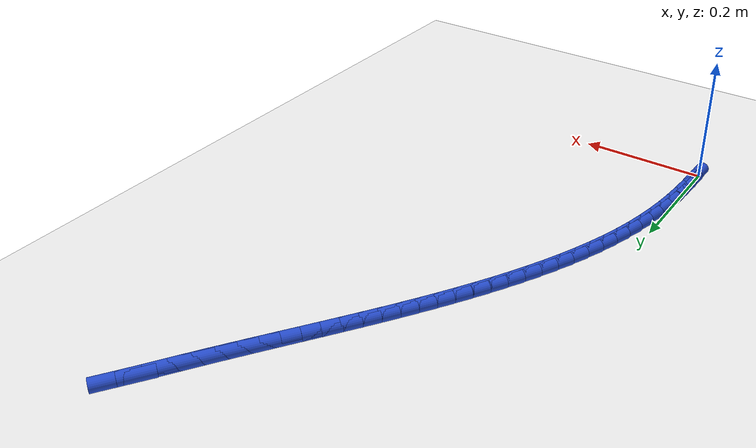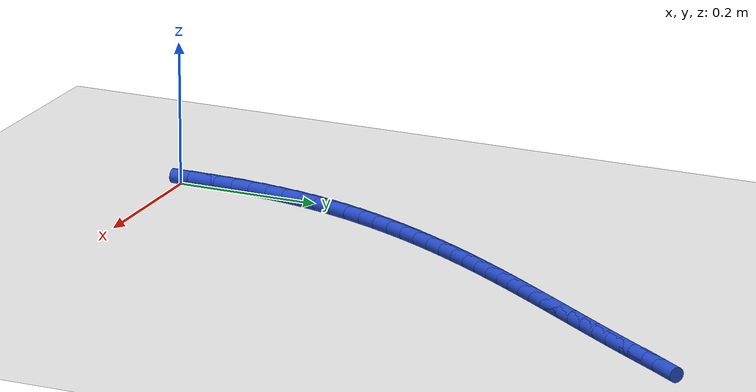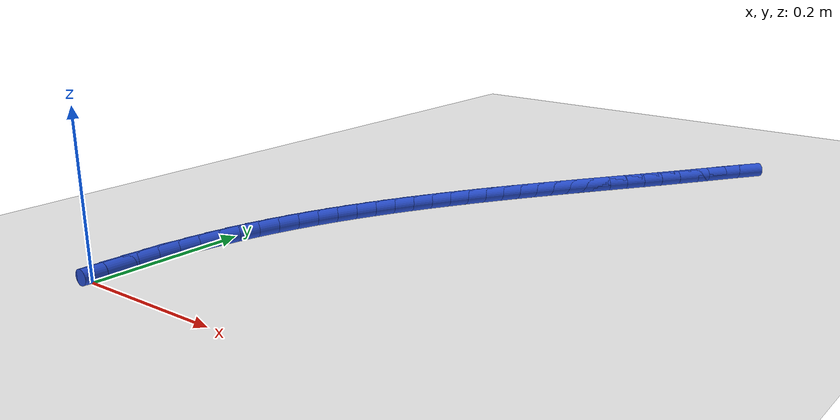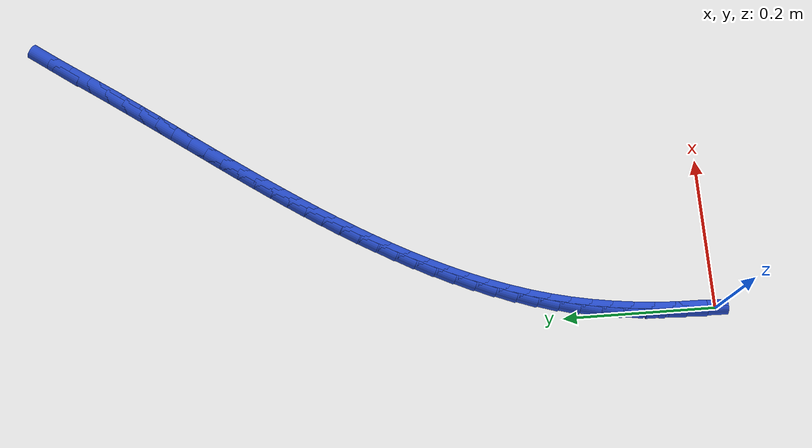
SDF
<sdf version="1.6">
 <world name="default">
  <model name="ground_plane">
   <static>1</static>
   <link name="link">
    <collision name="collision">
     <geometry><plane><normal>0 0 1</normal><size>100 100</size></plane></geometry>
     <surface><friction><ode><mu>100</mu><mu2>50</mu2></ode></friction></surface>
    </collision>
    <visual name="visual">
     <cast_shadows>0</cast_shadows>
     <geometry><plane><normal>0 0 1</normal><size>100 100</size></plane></geometry>
     <material>
      <script><uri>file://media/materials/scripts/gazebo.material</uri><name>Gazebo/WhiteGlow</name></script>
     </material>
    </visual>
   </link>
  </model>
  <model name="line">
   <link name="link_1">
    <pose>-2.9200421300071996e-05 0.027061845172039942 0.01 0 1.57 1.5444949600716549</pose>
    <collision name="collision">
     <geometry><cylinder><radius>0.01</radius><length>0.08</length></cylinder></geometry>
    </collision>
    <visual name="visual">
     <material>
      <script><name>Gazebo/Blue</name><uri>file://media/materials/scripts/gazebo.material</uri></script>
     </material>
     <geometry><cylinder><radius>0.01</radius><length>0.08</length></cylinder></geometry>
    </visual>
   </link>
   <link name="link_2">
    <pose>0.0006842096569551237 0.054180039251902304 0.01 0 1.57 1.5151995954347877</pose>
    <collision name="collision">
     <geometry><cylinder><radius>0.01</radius><length>0.08</length></cylinder></geometry>
    </collision>
    <visual name="visual">
     <material>
      <script><name>Gazebo/Blue</name><uri>file://media/materials/scripts/gazebo.material</uri></script>
     </material>
     <geometry><cylinder><radius>0.01</radius><length>0.08</length></cylinder></geometry>
    </visual>
   </link>
   <link name="link_3">
    <pose>0.002194301996070999 0.08131357902605951 0.01 0 1.57 1.4839247480656252</pose>
    <collision name="collision">
     <geometry><cylinder><radius>0.01</radius><length>0.08</length></cylinder></geometry>
    </collision>
    <visual name="visual">
     <material>
      <script><name>Gazebo/Blue</name><uri>file://media/materials/scripts/gazebo.material</uri></script>
     </material>
     <geometry><cylinder><radius>0.01</radius><length>0.08</length></cylinder></geometry>
    </visual>
   </link>
   <link name="link_4">
    <pose>0.004555148357352962 0.10842146128098404 0.01 0 1.57 1.4506119062643106</pose>
    <collision name="collision">
     <geometry><cylinder><radius>0.01</radius><length>0.08</length></cylinder></geometry>
    </collision>
    <visual name="visual">
     <material>
      <script><name>Gazebo/Blue</name><uri>file://media/materials/scripts/gazebo.material</uri></script>
     </material>
     <geometry><cylinder><radius>0.01</radius><length>0.08</length></cylinder></geometry>
    </visual>
   </link>
   <link name="link_5">
    <pose>0.007820820502106415 0.13546268280314816 0.01 0 1.57 1.4152124454950412</pose>
    <collision name="collision">
     <geometry><cylinder><radius>0.01</radius><length>0.08</length></cylinder></geometry>
    </collision>
    <visual name="visual">
     <material>
      <script><name>Gazebo/Blue</name><uri>file://media/materials/scripts/gazebo.material</uri></script>
     </material>
     <geometry><cylinder><radius>0.01</radius><length>0.08</length></cylinder></geometry>
    </visual>
   </link>
   <link name="link_6">
    <pose>0.012045390191636758 0.1623962403790244 0.01 0 1.57 1.377692109483791</pose>
    <collision name="collision">
     <geometry><cylinder><radius>0.01</radius><length>0.08</length></cylinder></geometry>
    </collision>
    <visual name="visual">
     <material>
      <script><name>Gazebo/Blue</name><uri>file://media/materials/scripts/gazebo.material</uri></script>
     </material>
     <geometry><cylinder><radius>0.01</radius><length>0.08</length></cylinder></geometry>
    </visual>
   </link>
   <link name="link_7">
    <pose>0.0172829291872494 0.18918113079508506 0.01 0 1.57 1.3380360453744053</pose>
    <collision name="collision">
     <geometry><cylinder><radius>0.01</radius><length>0.08</length></cylinder></geometry>
    </collision>
    <visual name="visual">
     <material>
      <script><name>Gazebo/Blue</name><uri>file://media/materials/scripts/gazebo.material</uri></script>
     </material>
     <geometry><cylinder><radius>0.01</radius><length>0.08</length></cylinder></geometry>
    </visual>
   </link>
   <link name="link_8">
    <pose>0.023587508601963982 0.21577635093613604 0.01 0 1.57 1.297177161098241</pose>
    <collision name="collision">
     <geometry><cylinder><radius>0.01</radius><length>0.08</length></cylinder></geometry>
    </collision>
    <visual name="visual">
     <material>
      <script><name>Gazebo/Blue</name><uri>file://media/materials/scripts/gazebo.material</uri></script>
     </material>
     <geometry><cylinder><radius>0.01</radius><length>0.08</length></cylinder></geometry>
    </visual>
   </link>
   <link name="link_9">
    <pose>0.030988013248767855 0.2421447179992894 0.01 0 1.57 1.2584734507983595</pose>
    <collision name="collision">
     <geometry><cylinder><radius>0.01</radius><length>0.08</length></cylinder></geometry>
    </collision>
    <visual name="visual">
     <material>
      <script><name>Gazebo/Blue</name><uri>file://media/materials/scripts/gazebo.material</uri></script>
     </material>
     <geometry><cylinder><radius>0.01</radius><length>0.08</length></cylinder></geometry>
    </visual>
   </link>
   <link name="link_10">
    <pose>0.039421361722653536 0.26826299881593973 0.01 0 1.57 1.2226131388580286</pose>
    <collision name="collision">
     <geometry><cylinder><radius>0.01</radius><length>0.08</length></cylinder></geometry>
    </collision>
    <visual name="visual">
     <material>
      <script><name>Gazebo/Blue</name><uri>file://media/materials/scripts/gazebo.material</uri></script>
     </material>
     <geometry><cylinder><radius>0.01</radius><length>0.08</length></cylinder></geometry>
    </visual>
   </link>
   <link name="link_11">
    <pose>0.04880348759329643 0.2941111432713786 0.01 0 1.57 1.189492367818633</pose>
    <collision name="collision">
     <geometry><cylinder><radius>0.01</radius><length>0.08</length></cylinder></geometry>
    </collision>
    <visual name="visual">
     <material>
      <script><name>Gazebo/Blue</name><uri>file://media/materials/scripts/gazebo.material</uri></script>
     </material>
     <geometry><cylinder><radius>0.01</radius><length>0.08</length></cylinder></geometry>
    </visual>
   </link>
   <link name="link_12">
    <pose>0.05905032443037188 0.31966910125089765 0.01 0 1.57 1.1589976364144043</pose>
    <collision name="collision">
     <geometry><cylinder><radius>0.01</radius><length>0.08</length></cylinder></geometry>
    </collision>
    <visual name="visual">
     <material>
      <script><name>Gazebo/Blue</name><uri>file://media/materials/scripts/gazebo.material</uri></script>
     </material>
     <geometry><cylinder><radius>0.01</radius><length>0.08</length></cylinder></geometry>
    </visual>
   </link>
   <link name="link_13">
    <pose>0.07007780580355527 0.34491682263978823 0.01 0 1.57 1.1310126287522888</pose>
    <collision name="collision">
     <geometry><cylinder><radius>0.01</radius><length>0.08</length></cylinder></geometry>
    </collision>
    <visual name="visual">
     <material>
      <script><name>Gazebo/Blue</name><uri>file://media/materials/scripts/gazebo.material</uri></script>
     </material>
     <geometry><cylinder><radius>0.01</radius><length>0.08</length></cylinder></geometry>
    </visual>
   </link>
   <link name="link_14">
    <pose>0.081801865282522 0.3698342573233421 0.01 0 1.57 1.105423599570831</pose>
    <collision name="collision">
     <geometry><cylinder><radius>0.01</radius><length>0.08</length></cylinder></geometry>
    </collision>
    <visual name="visual">
     <material>
      <script><name>Gazebo/Blue</name><uri>file://media/materials/scripts/gazebo.material</uri></script>
     </material>
     <geometry><cylinder><radius>0.01</radius><length>0.08</length></cylinder></geometry>
    </visual>
   </link>
   <link name="link_15">
    <pose>0.0941384364369474 0.3944013551868507 0.01 0 1.57 1.0821235650894114</pose>
    <collision name="collision">
     <geometry><cylinder><radius>0.01</radius><length>0.08</length></cylinder></geometry>
    </collision>
    <visual name="visual">
     <material>
      <script><name>Gazebo/Blue</name><uri>file://media/materials/scripts/gazebo.material</uri></script>
     </material>
     <geometry><cylinder><radius>0.01</radius><length>0.08</length></cylinder></geometry>
    </visual>
   </link>
   <link name="link_16">
    <pose>0.10700345283650689 0.4185980661156056 0.01 0 1.57 1.061015569920367</pose>
    <collision name="collision">
     <geometry><cylinder><radius>0.01</radius><length>0.08</length></cylinder></geometry>
    </collision>
    <visual name="visual">
     <material>
      <script><name>Gazebo/Blue</name><uri>file://media/materials/scripts/gazebo.material</uri></script>
     </material>
     <geometry><cylinder><radius>0.01</radius><length>0.08</length></cylinder></geometry>
    </visual>
   </link>
   <link name="link_17">
    <pose>0.12031284805087583 0.4424043399948985 0.01 0 1.57 1.0420152957055933</pose>
    <collision name="collision">
     <geometry><cylinder><radius>0.01</radius><length>0.08</length></cylinder></geometry>
    </collision>
    <visual name="visual">
     <material>
      <script><name>Gazebo/Blue</name><uri>file://media/materials/scripts/gazebo.material</uri></script>
     </material>
     <geometry><cylinder><radius>0.01</radius><length>0.08</length></cylinder></geometry>
    </visual>
   </link>
   <link name="link_18">
    <pose>0.1339825556497296 0.4658001267100208 0.01 0 1.57 1.0250532614204548</pose>
    <collision name="collision">
     <geometry><cylinder><radius>0.01</radius><length>0.08</length></cylinder></geometry>
    </collision>
    <visual name="visual">
     <material>
      <script><name>Gazebo/Blue</name><uri>file://media/materials/scripts/gazebo.material</uri></script>
     </material>
     <geometry><cylinder><radius>0.01</radius><length>0.08</length></cylinder></geometry>
    </visual>
   </link>
   <link name="link_19">
    <pose>0.14792850920274353 0.488765376146264 0.01 0 1.57 1.0100768490725263</pose>
    <collision name="collision">
     <geometry><cylinder><radius>0.01</radius><length>0.08</length></cylinder></geometry>
    </collision>
    <visual name="visual">
     <material>
      <script><name>Gazebo/Blue</name><uri>file://media/materials/scripts/gazebo.material</uri></script>
     </material>
     <geometry><cylinder><radius>0.01</radius><length>0.08</length></cylinder></geometry>
    </visual>
   </link>
   <link name="link_20">
    <pose>0.1620666422795931 0.5112800381889199 0.01 0 1.57 0.9970488804408632</pose>
    <collision name="collision">
     <geometry><cylinder><radius>0.01</radius><length>0.08</length></cylinder></geometry>
    </collision>
    <visual name="visual">
     <material>
      <script><name>Gazebo/Blue</name><uri>file://media/materials/scripts/gazebo.material</uri></script>
     </material>
     <geometry><cylinder><radius>0.01</radius><length>0.08</length></cylinder></geometry>
    </visual>
   </link>
   <link name="link_21">
    <pose>0.17631340872781767 0.5333246985951458 0.01 0 1.57 0.9857089173041975</pose>
    <collision name="collision">
     <geometry><cylinder><radius>0.01</radius><length>0.08</length></cylinder></geometry>
    </collision>
    <visual name="visual">
     <material>
      <script><name>Gazebo/Blue</name><uri>file://media/materials/scripts/gazebo.material</uri></script>
     </material>
     <geometry><cylinder><radius>0.01</radius><length>0.08</length></cylinder></geometry>
    </visual>
   </link>
   <link name="link_22">
    <pose>0.19062581661681963 0.5549295075769992 0.01 0 1.57 0.9757428286752328</pose>
    <collision name="collision">
     <geometry><cylinder><radius>0.01</radius><length>0.08</length></cylinder></geometry>
    </collision>
    <visual name="visual">
     <material>
      <script><name>Gazebo/Blue</name><uri>file://media/materials/scripts/gazebo.material</uri></script>
     </material>
     <geometry><cylinder><radius>0.01</radius><length>0.08</length></cylinder></geometry>
    </visual>
   </link>
   <link name="link_23">
    <pose>0.2050297864740089 0.5762088385977815 0.01 0 1.57 0.9672819725678445</pose>
    <collision name="collision">
     <geometry><cylinder><radius>0.01</radius><length>0.08</length></cylinder></geometry>
    </collision>
    <visual name="visual">
     <material>
      <script><name>Gazebo/Blue</name><uri>file://media/materials/scripts/gazebo.material</uri></script>
     </material>
     <geometry><cylinder><radius>0.01</radius><length>0.08</length></cylinder></geometry>
    </visual>
   </link>
   <link name="link_24">
    <pose>0.21955793547863278 0.5972852496175668 0.01 0 1.57 0.9604632881481213</pose>
    <collision name="collision">
     <geometry><cylinder><radius>0.01</radius><length>0.08</length></cylinder></geometry>
    </collision>
    <visual name="visual">
     <material>
      <script><name>Gazebo/Blue</name><uri>file://media/materials/scripts/gazebo.material</uri></script>
     </material>
     <geometry><cylinder><radius>0.01</radius><length>0.08</length></cylinder></geometry>
    </visual>
   </link>
   <link name="link_25">
    <pose>0.2342428808099382 0.6182812985964294 0.01 0 1.57 0.9553776776413522</pose>
    <collision name="collision">
     <geometry><cylinder><radius>0.01</radius><length>0.08</length></cylinder></geometry>
    </collision>
    <visual name="visual">
     <material>
      <script><name>Gazebo/Blue</name><uri>file://media/materials/scripts/gazebo.material</uri></script>
     </material>
     <geometry><cylinder><radius>0.01</radius><length>0.08</length></cylinder></geometry>
    </visual>
   </link>
   <link name="link_26">
    <pose>0.24911723964717222 0.6393195434944434 0.01 0 1.57 0.9520665482746776</pose>
    <collision name="collision">
     <geometry><cylinder><radius>0.01</radius><length>0.08</length></cylinder></geometry>
    </collision>
    <visual name="visual">
     <material>
      <script><name>Gazebo/Blue</name><uri>file://media/materials/scripts/gazebo.material</uri></script>
     </material>
     <geometry><cylinder><radius>0.01</radius><length>0.08</length></cylinder></geometry>
    </visual>
   </link>
   <link name="link_27">
    <pose>0.264213629169582 0.6605225422716826 0.01 0 1.57 0.9505217134233779</pose>
    <collision name="collision">
     <geometry><cylinder><radius>0.01</radius><length>0.08</length></cylinder></geometry>
    </collision>
    <visual name="visual">
     <material>
      <script><name>Gazebo/Blue</name><uri>file://media/materials/scripts/gazebo.material</uri></script>
     </material>
     <geometry><cylinder><radius>0.01</radius><length>0.08</length></cylinder></geometry>
    </visual>
   </link>
   <link name="link_28">
    <pose>0.2795646665564146 0.6820128528882213 0.01 0 1.57 0.9506884653868233</pose>
    <collision name="collision">
     <geometry><cylinder><radius>0.01</radius><length>0.08</length></cylinder></geometry>
    </collision>
    <visual name="visual">
     <material>
      <script><name>Gazebo/Blue</name><uri>file://media/materials/scripts/gazebo.material</uri></script>
     </material>
     <geometry><cylinder><radius>0.01</radius><length>0.08</length></cylinder></geometry>
    </visual>
   </link>
   <link name="link_29">
    <pose>0.29520296898691717 0.7039130333041339 0.01 0 1.57 0.9524712953232691</pose>
    <collision name="collision">
     <geometry><cylinder><radius>0.01</radius><length>0.08</length></cylinder></geometry>
    </collision>
    <visual name="visual">
     <material>
      <script><name>Gazebo/Blue</name><uri>file://media/materials/scripts/gazebo.material</uri></script>
     </material>
     <geometry><cylinder><radius>0.01</radius><length>0.08</length></cylinder></geometry>
    </visual>
   </link>
   <link name="link_30">
    <pose>0.3111611536403367 0.7263456414794943 0.01 0 1.57 0.9557415091581019</pose>
    <collision name="collision">
     <geometry><cylinder><radius>0.01</radius><length>0.08</length></cylinder></geometry>
    </collision>
    <visual name="visual">
     <material>
      <script><name>Gazebo/Blue</name><uri>file://media/materials/scripts/gazebo.material</uri></script>
     </material>
     <geometry><cylinder><radius>0.01</radius><length>0.08</length></cylinder></geometry>
    </visual>
   </link>
   <link name="link_31">
    <pose>0.3274718376959202 0.7494332353743766 0.01 0 1.57 0.960345891499181</pose>
    <collision name="collision">
     <geometry><cylinder><radius>0.01</radius><length>0.08</length></cylinder></geometry>
    </collision>
    <visual name="visual">
     <material>
      <script><name>Gazebo/Blue</name><uri>file://media/materials/scripts/gazebo.material</uri></script>
     </material>
     <geometry><cylinder><radius>0.01</radius><length>0.08</length></cylinder></geometry>
    </visual>
   </link>
   <link name="link_32">
    <pose>0.344167638332915 0.7732983729488551 0.01 0 1.57 0.9661155952133936</pose>
    <collision name="collision">
     <geometry><cylinder><radius>0.01</radius><length>0.08</length></cylinder></geometry>
    </collision>
    <visual name="visual">
     <material>
      <script><name>Gazebo/Blue</name><uri>file://media/materials/scripts/gazebo.material</uri></script>
     </material>
     <geometry><cylinder><radius>0.01</radius><length>0.08</length></cylinder></geometry>
    </visual>
   </link>
   <link name="link_33">
    <pose>0.36128117273056803 0.7980636121630038 0.01 0 1.57 0.9728134124557227</pose>
    <collision name="collision">
     <geometry><cylinder><radius>0.01</radius><length>0.08</length></cylinder></geometry>
    </collision>
    <visual name="visual">
     <material>
      <script><name>Gazebo/Blue</name><uri>file://media/materials/scripts/gazebo.material</uri></script>
     </material>
     <geometry><cylinder><radius>0.01</radius><length>0.08</length></cylinder></geometry>
    </visual>
   </link>
   <link name="link_34">
    <pose>0.3788452236043237 0.8238483653737788 0.01 0 1.57 0.9730356652216618</pose>
    <collision name="collision">
     <geometry><cylinder><radius>0.01</radius><length>0.08</length></cylinder></geometry>
    </collision>
    <visual name="visual">
     <material>
      <script><name>Gazebo/Blue</name><uri>file://media/materials/scripts/gazebo.material</uri></script>
     </material>
     <geometry><cylinder><radius>0.01</radius><length>0.08</length></cylinder></geometry>
    </visual>
   </link>
   <link name="link_35">
    <pose>0.3969129321458374 0.8503851828061529 0.01 0 1.57 0.9530143231418904</pose>
    <collision name="collision">
     <geometry><cylinder><radius>0.01</radius><length>0.08</length></cylinder></geometry>
    </collision>
    <visual name="visual">
     <material>
      <script><name>Gazebo/Blue</name><uri>file://media/materials/scripts/gazebo.material</uri></script>
     </material>
     <geometry><cylinder><radius>0.01</radius><length>0.08</length></cylinder></geometry>
    </visual>
   </link>
   <link name="link_291">
    <pose>-3.5180357825605624e-05 0.0270740606410331 0.01 0 1.57 1.5461153422168965</pose>
    <collision name="collision">
     <geometry><cylinder><radius>0.01</radius><length>0.08</length></cylinder></geometry>
    </collision>
    <visual name="visual">
     <material>
      <script><name>Gazebo/Blue</name><uri>file://media/materials/scripts/gazebo.material</uri></script>
     </material>
     <geometry><cylinder><radius>0.01</radius><length>0.08</length></cylinder></geometry>
    </visual>
   </link>
   <link name="link_292">
    <pose>0.0006363701647509332 0.05427776300385402 0.01 0 1.57 1.559072538386931</pose>
    <collision name="collision">
     <geometry><cylinder><radius>0.01</radius><length>0.08</length></cylinder></geometry>
    </collision>
    <visual name="visual">
     <material>
      <script><name>Gazebo/Blue</name><uri>file://media/materials/scripts/gazebo.material</uri></script>
     </material>
     <geometry><cylinder><radius>0.01</radius><length>0.08</length></cylinder></geometry>
    </visual>
   </link>
  </model>
 </world>
</sdf>
